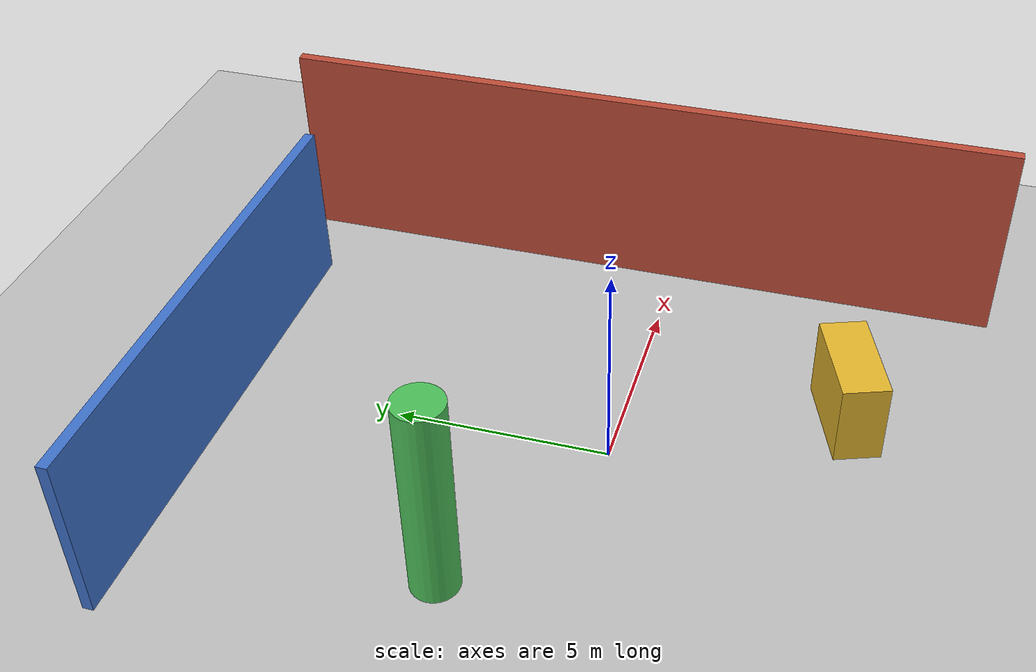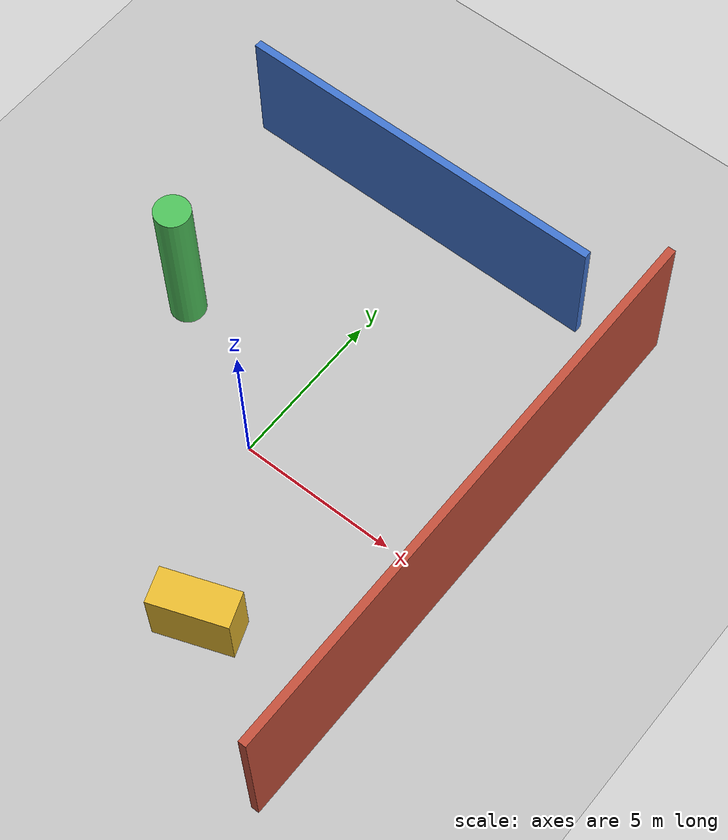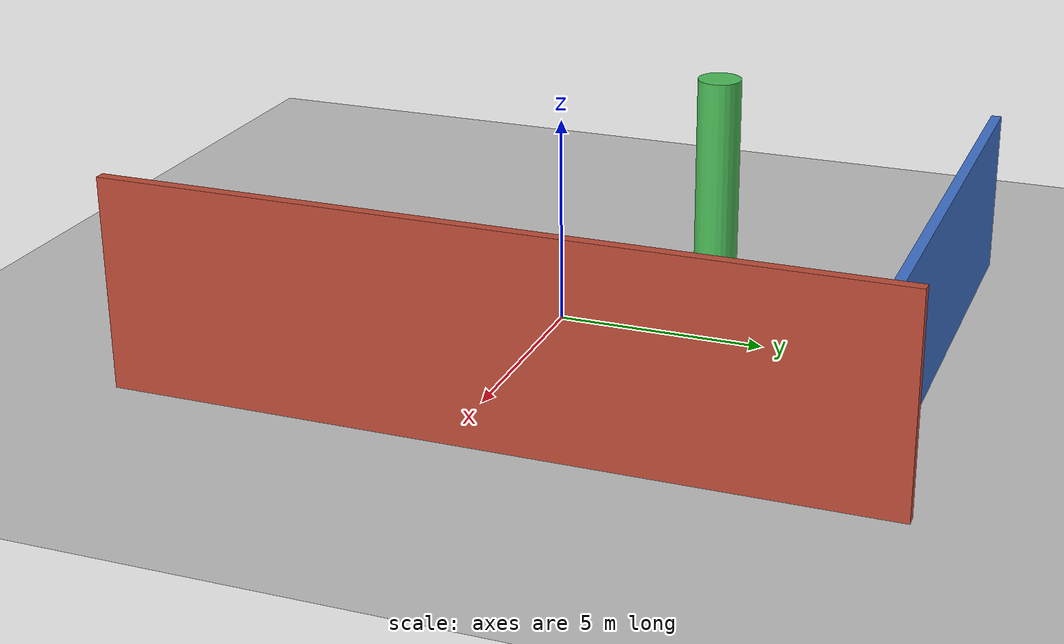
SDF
<sdf version="1.9">
 <world name="px4_lio_smoke">
  <physics type="ode">
   <max_step_size>0.004</max_step_size>
   <real_time_factor>0.8</real_time_factor>
   <real_time_update_rate>200</real_time_update_rate>
  </physics>
  <gravity>0 0 -9.8</gravity>
  <magnetic_field>6e-06 2.3e-05 -4.2e-05</magnetic_field>
  <atmosphere type="adiabatic"/>
  <scene>
   <grid>true</grid>
   <ambient>0.4 0.4 0.4 1</ambient>
   <background>0.72 0.78 0.85 1</background>
   <shadows>true</shadows>
  </scene>
  <model name="ground_plane">
   <static>true</static>
   <link name="link">
    <collision name="collision">
     <geometry><plane><normal>0 0 1</normal><size>200 200</size></plane></geometry>
    </collision>
    <visual name="visual">
     <geometry><plane><normal>0 0 1</normal><size>200 200</size></plane></geometry>
     <material><ambient>0.75 0.75 0.75 1</ambient><diffuse>0.75 0.75 0.75 1</diffuse></material>
    </visual>
   </link>
  </model>
  <model name="smoke_wall_east">
   <static>true</static>
   <pose>7 1 2.5 0 0 0</pose>
   <link name="link">
    <collision name="collision"><geometry><box><size>0.25 18 5</size></box></geometry></collision>
    <visual name="visual">
     <geometry><box><size>0.25 18 5</size></box></geometry>
     <material><ambient>0.60 0.25 0.20 1</ambient><diffuse>0.75 0.30 0.22 1</diffuse></material>
    </visual>
   </link>
  </model>
  <model name="smoke_wall_north">
   <static>true</static>
   <pose>-1 9 2.0 0 0 0</pose>
   <link name="link">
    <collision name="collision"><geometry><box><size>12 0.25 4</size></box></geometry></collision>
    <visual name="visual">
     <geometry><box><size>12 0.25 4</size></box></geometry>
     <material><ambient>0.20 0.35 0.65 1</ambient><diffuse>0.25 0.45 0.80 1</diffuse></material>
    </visual>
   </link>
  </model>
  <model name="smoke_pillar_west">
   <static>true</static>
   <pose>-4.5 2.5 2.5 0 0 0</pose>
   <link name="link">
    <collision name="collision">
     <geometry><cylinder><radius>0.55</radius><length>5</length></cylinder></geometry>
    </collision>
    <visual name="visual">
     <geometry><cylinder><radius>0.55</radius><length>5</length></cylinder></geometry>
     <material><ambient>0.25 0.60 0.30 1</ambient><diffuse>0.30 0.75 0.35 1</diffuse></material>
    </visual>
   </link>
  </model>
  <model name="smoke_box_south">
   <static>true</static>
   <pose>2.5 -5.0 1.0 0 0 0.35</pose>
   <link name="link">
    <collision name="collision"><geometry><box><size>2.4 1.1 2.0</size></box></geometry></collision>
    <visual name="visual">
     <geometry><box><size>2.4 1.1 2.0</size></box></geometry>
     <material><ambient>0.75 0.60 0.15 1</ambient><diffuse>0.90 0.72 0.18 1</diffuse></material>
    </visual>
   </link>
  </model>
  <light name="sunUTC" type="directional">
   <pose>0 0 500 0 0 0</pose>
   <intensity>1</intensity>
   <direction>0.001 0.625 -0.78</direction>
   <diffuse>0.904 0.904 0.904 1</diffuse>
   <specular>0.271 0.271 0.271 1</specular>
   <attenuation><range>2000</range><linear>0</linear><constant>1</constant><quadratic>0</quadratic></attenuation>
  </light>
  <spherical_coordinates>
   <surface_model>EARTH_WGS84</surface_model>
   <world_frame_orientation>ENU</world_frame_orientation>
   <latitude_deg>10.8231</latitude_deg>
   <longitude_deg>106.6297</longitude_deg>
   <elevation>10</elevation>
  </spherical_coordinates>
 </world>
</sdf>
